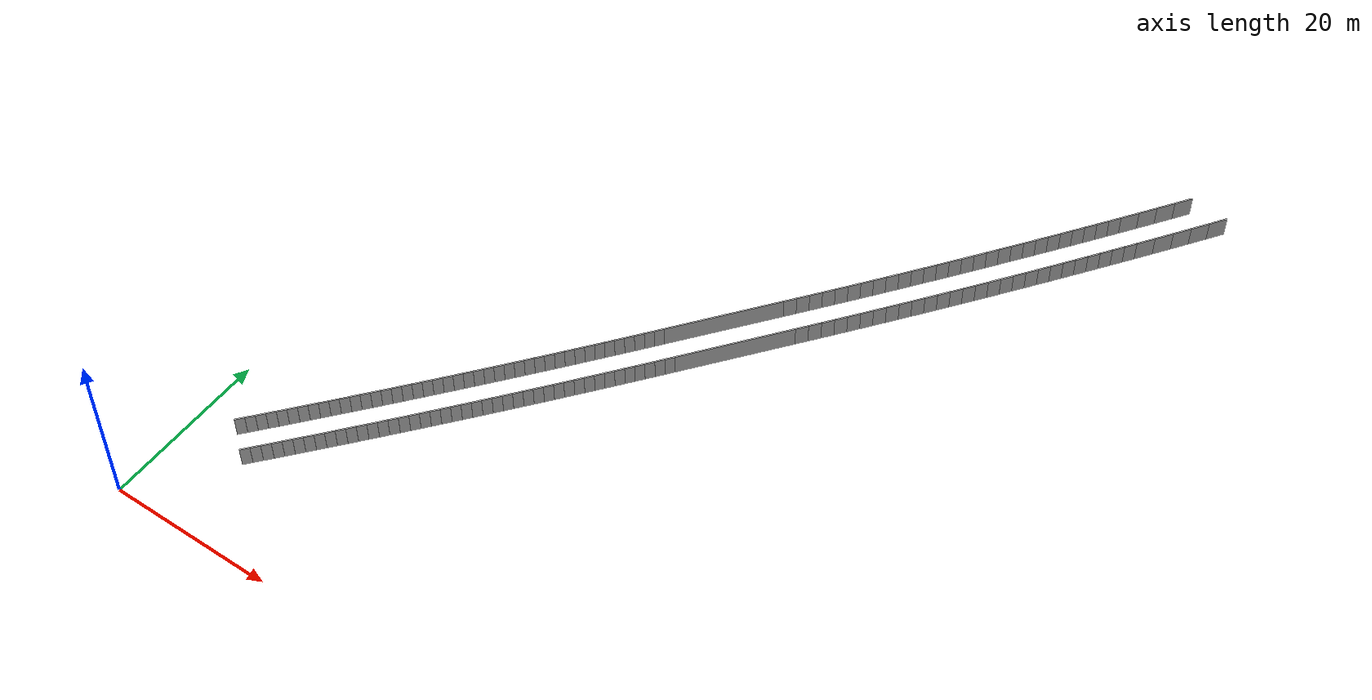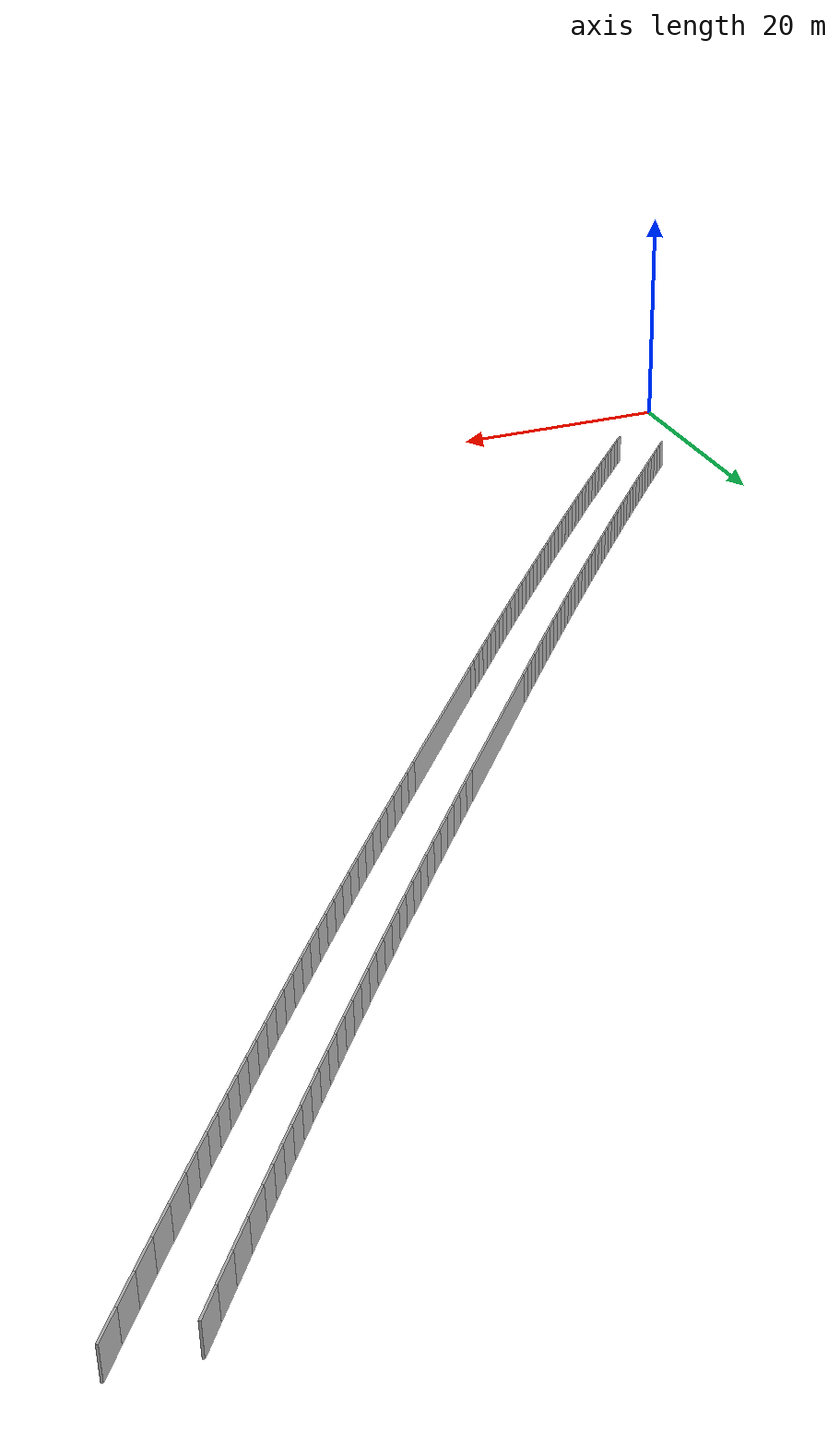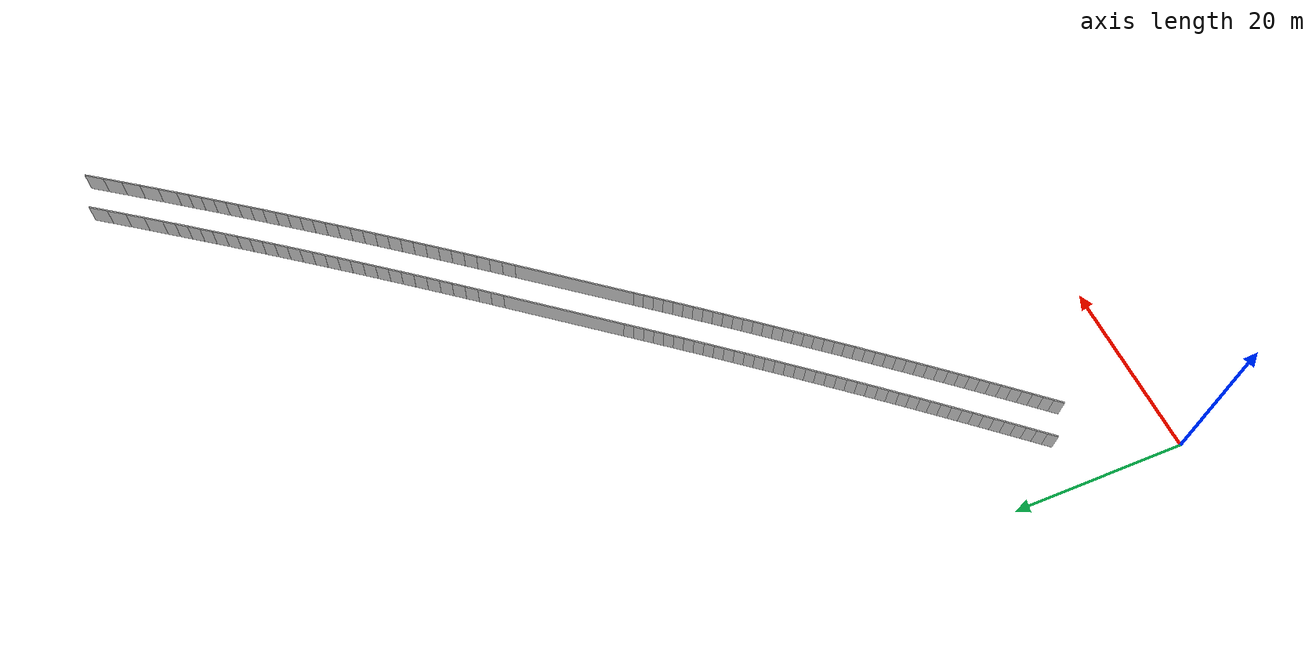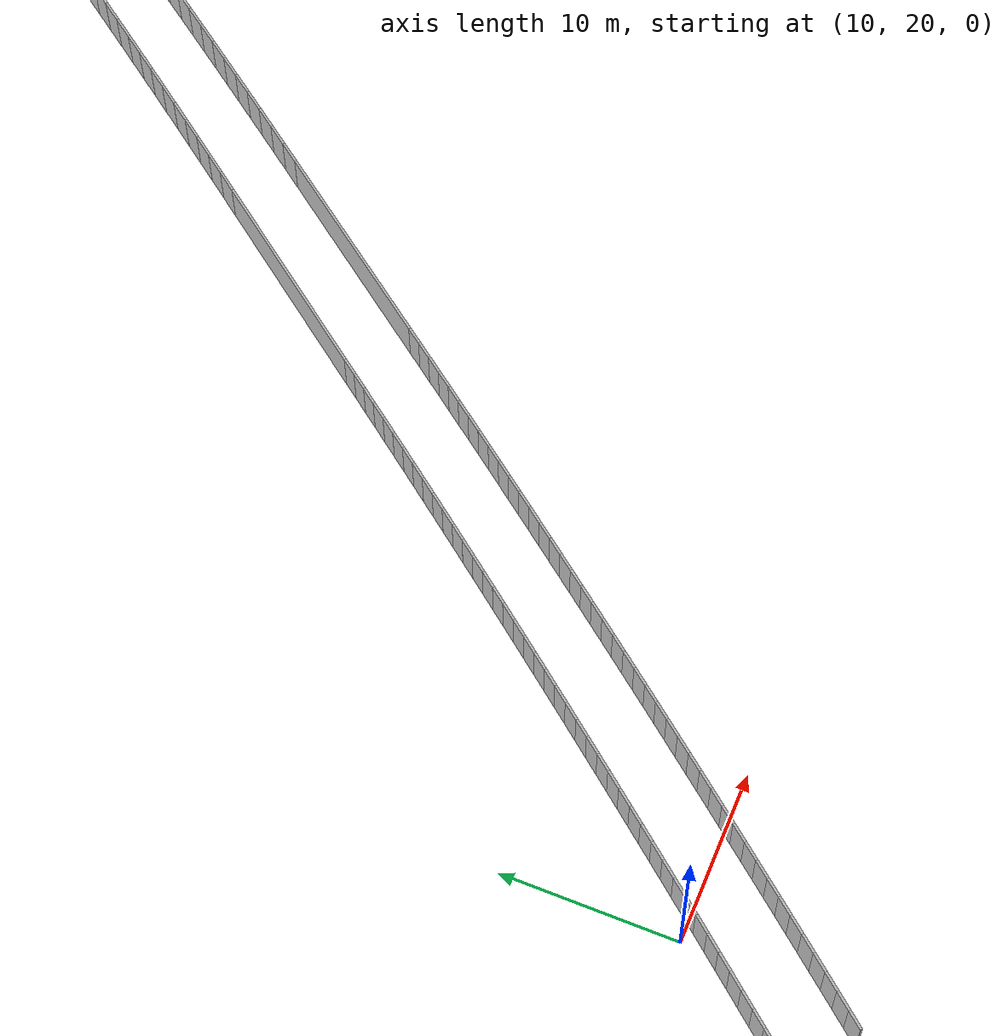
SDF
<sdf version="1.6">
 <model name="sps_2106">
  <static>1</static>
  <allow_auto_disable>0</allow_auto_disable>
  <link name="Wall250">
   <collision name="collision"><geometry><box><size>13.7169 0.15 2.5</size></box></geometry></collision>
   <visual name="visual">
    <geometry><box><size>13.7169 0.15 2.5</size></box></geometry>
    <transparency>0.0</transparency>
   </visual>
   <pose>41.9678 52.3142 1.25 0 0 -2.22473</pose>
  </link>
  <link name="Wall474">
   <collision name="collision"><geometry><box><size>13.7281 0.15 2.5</size></box></geometry></collision>
   <visual name="visual">
    <geometry><box><size>13.7281 0.15 2.5</size></box></geometry>
    <transparency>0.0</transparency>
   </visual>
   <pose>38.6811 54.8316 1.25 0 -0 0.916844</pose>
  </link>
  <link name="Wall4303">
   <collision name="collision"><geometry><box><size>1.5025 0.15 2.5</size></box></geometry></collision>
   <visual name="visual">
    <geometry><box><size>1.5025 0.15 2.5</size></box></geometry>
    <transparency>0.0</transparency>
   </visual>
   <pose>46.5969 58.3539 1.25 0 -0 0.916701</pose>
  </link>
  <link name="Wall4304">
   <collision name="collision"><geometry><box><size>1.50299 0.15 2.5</size></box></geometry></collision>
   <visual name="visual">
    <geometry><box><size>1.50299 0.15 2.5</size></box></geometry>
    <transparency>0.0</transparency>
   </visual>
   <pose>47.5103 59.5472 1.25 0 -0 0.91828</pose>
  </link>
  <link name="Wall4305">
   <collision name="collision"><geometry><box><size>1.50314 0.15 2.5</size></box></geometry></collision>
   <visual name="visual">
    <geometry><box><size>1.50314 0.15 2.5</size></box></geometry>
    <transparency>0.0</transparency>
   </visual>
   <pose>48.4221 60.7421 1.25 0 -0 0.919686</pose>
  </link>
  <link name="Wall4306">
   <collision name="collision"><geometry><box><size>1.50288 0.15 2.5</size></box></geometry></collision>
   <visual name="visual">
    <geometry><box><size>1.50288 0.15 2.5</size></box></geometry>
    <transparency>0.0</transparency>
   </visual>
   <pose>49.3321 61.9384 1.25 0 -0 0.92139</pose>
  </link>
  <link name="Wall4307">
   <collision name="collision"><geometry><box><size>1.50309 0.15 2.5</size></box></geometry></collision>
   <visual name="visual">
    <geometry><box><size>1.50309 0.15 2.5</size></box></geometry>
    <transparency>0.0</transparency>
   </visual>
   <pose>50.24 63.1362 1.25 0 -0 0.923023</pose>
  </link>
  <link name="Wall4308">
   <collision name="collision"><geometry><box><size>1.50314 0.15 2.5</size></box></geometry></collision>
   <visual name="visual">
    <geometry><box><size>1.50314 0.15 2.5</size></box></geometry>
    <transparency>0.0</transparency>
   </visual>
   <pose>51.146 64.3355 1.25 0 -0 0.924526</pose>
  </link>
  <link name="Wall4309">
   <collision name="collision"><geometry><box><size>1.50305 0.15 2.5</size></box></geometry></collision>
   <visual name="visual">
    <geometry><box><size>1.50305 0.15 2.5</size></box></geometry>
    <transparency>0.0</transparency>
   </visual>
   <pose>52.0503 65.5362 1.25 0 -0 0.926158</pose>
  </link>
  <link name="Wall4310">
   <collision name="collision"><geometry><box><size>1.50306 0.15 2.5</size></box></geometry></collision>
   <visual name="visual">
    <geometry><box><size>1.50306 0.15 2.5</size></box></geometry>
    <transparency>0.0</transparency>
   </visual>
   <pose>52.9526 66.7383 1.25 0 -0 0.927636</pose>
  </link>
  <link name="Wall4311">
   <collision name="collision"><geometry><box><size>1.50314 0.15 2.5</size></box></geometry></collision>
   <visual name="visual">
    <geometry><box><size>1.50314 0.15 2.5</size></box></geometry>
    <transparency>0.0</transparency>
   </visual>
   <pose>53.853 67.9419 1.25 0 -0 0.929399</pose>
  </link>
  <link name="Wall4312">
   <collision name="collision"><geometry><box><size>1.5031 0.15 2.5</size></box></geometry></collision>
   <visual name="visual">
    <geometry><box><size>1.5031 0.15 2.5</size></box></geometry>
    <transparency>0.0</transparency>
   </visual>
   <pose>54.7515 69.1469 1.25 0 -0 0.930795</pose>
  </link>
  <link name="Wall4313">
   <collision name="collision"><geometry><box><size>1.50308 0.15 2.5</size></box></geometry></collision>
   <visual name="visual">
    <geometry><box><size>1.50308 0.15 2.5</size></box></geometry>
    <transparency>0.0</transparency>
   </visual>
   <pose>55.6481 70.3533 1.25 0 -0 0.932509</pose>
  </link>
  <link name="Wall4314">
   <collision name="collision"><geometry><box><size>1.5031 0.15 2.5</size></box></geometry></collision>
   <visual name="visual">
    <geometry><box><size>1.5031 0.15 2.5</size></box></geometry>
    <transparency>0.0</transparency>
   </visual>
   <pose>56.5427 71.5612 1.25 0 -0 0.934133</pose>
  </link>
  <link name="Wall4315">
   <collision name="collision"><geometry><box><size>1.50325 0.15 2.5</size></box></geometry></collision>
   <visual name="visual">
    <geometry><box><size>1.50325 0.15 2.5</size></box></geometry>
    <transparency>0.0</transparency>
   </visual>
   <pose>57.4354 72.7705 1.25 0 -0 0.93557</pose>
  </link>
  <link name="Wall4316">
   <collision name="collision"><geometry><box><size>1.50292 0.15 2.5</size></box></geometry></collision>
   <visual name="visual">
    <geometry><box><size>1.50292 0.15 2.5</size></box></geometry>
    <transparency>0.0</transparency>
   </visual>
   <pose>58.3263 73.9811 1.25 0 -0 0.937172</pose>
  </link>
  <link name="Wall4317">
   <collision name="collision"><geometry><box><size>1.50368 0.15 2.5</size></box></geometry></collision>
   <visual name="visual">
    <geometry><box><size>1.50368 0.15 2.5</size></box></geometry>
    <transparency>0.0</transparency>
   </visual>
   <pose>59.2154 75.1933 1.25 0 -0 0.93875</pose>
  </link>
  <link name="Wall4318">
   <collision name="collision"><geometry><box><size>1.50314 0.15 2.5</size></box></geometry></collision>
   <visual name="visual">
    <geometry><box><size>1.50314 0.15 2.5</size></box></geometry>
    <transparency>0.0</transparency>
   </visual>
   <pose>60.1027 76.407 1.25 0 -0 0.940403</pose>
  </link>
  <link name="Wall4319">
   <collision name="collision"><geometry><box><size>1.50312 0.15 2.5</size></box></geometry></collision>
   <visual name="visual">
    <geometry><box><size>1.50312 0.15 2.5</size></box></geometry>
    <transparency>0.0</transparency>
   </visual>
   <pose>60.9878 77.6219 1.25 0 -0 0.941946</pose>
  </link>
  <link name="Wall4320">
   <collision name="collision"><geometry><box><size>1.5031 0.15 2.5</size></box></geometry></collision>
   <visual name="visual">
    <geometry><box><size>1.5031 0.15 2.5</size></box></geometry>
    <transparency>0.0</transparency>
   </visual>
   <pose>61.8709 78.8382 1.25 0 -0 0.943546</pose>
  </link>
  <link name="Wall4321">
   <collision name="collision"><geometry><box><size>1.50315 0.15 2.5</size></box></geometry></collision>
   <visual name="visual">
    <geometry><box><size>1.50315 0.15 2.5</size></box></geometry>
    <transparency>0.0</transparency>
   </visual>
   <pose>62.7522 80.0559 1.25 0 -0 0.94517</pose>
  </link>
  <link name="Wall4322">
   <collision name="collision"><geometry><box><size>1.50302 0.15 2.5</size></box></geometry></collision>
   <visual name="visual">
    <geometry><box><size>1.50302 0.15 2.5</size></box></geometry>
    <transparency>0.0</transparency>
   </visual>
   <pose>63.6314 81.275 1.25 0 -0 0.946813</pose>
  </link>
  <link name="Wall4323">
   <collision name="collision"><geometry><box><size>1.50313 0.15 2.5</size></box></geometry></collision>
   <visual name="visual">
    <geometry><box><size>1.50313 0.15 2.5</size></box></geometry>
    <transparency>0.0</transparency>
   </visual>
   <pose>64.5087 82.4955 1.25 0 -0 0.948314</pose>
  </link>
  <link name="Wall4324">
   <collision name="collision"><geometry><box><size>1.50295 0.15 2.5</size></box></geometry></collision>
   <visual name="visual">
    <geometry><box><size>1.50295 0.15 2.5</size></box></geometry>
    <transparency>0.0</transparency>
   </visual>
   <pose>65.3841 83.7173 1.25 0 -0 0.949876</pose>
  </link>
  <link name="Wall4325">
   <collision name="collision"><geometry><box><size>1.50307 0.15 2.5</size></box></geometry></collision>
   <visual name="visual">
    <geometry><box><size>1.50307 0.15 2.5</size></box></geometry>
    <transparency>0.0</transparency>
   </visual>
   <pose>66.2574 84.9405 1.25 0 -0 0.951581</pose>
  </link>
  <link name="Wall4326">
   <collision name="collision"><geometry><box><size>1.50299 0.15 2.5</size></box></geometry></collision>
   <visual name="visual">
    <geometry><box><size>1.50299 0.15 2.5</size></box></geometry>
    <transparency>0.0</transparency>
   </visual>
   <pose>67.1289 86.1651 1.25 0 -0 0.952987</pose>
  </link>
  <link name="Wall4327">
   <collision name="collision"><geometry><box><size>1.5032 0.15 2.5</size></box></geometry></collision>
   <visual name="visual">
    <geometry><box><size>1.5032 0.15 2.5</size></box></geometry>
    <transparency>0.0</transparency>
   </visual>
   <pose>67.9986 87.3911 1.25 0 -0 0.954682</pose>
  </link>
  <link name="Wall4328">
   <collision name="collision"><geometry><box><size>1.50325 0.15 2.5</size></box></geometry></collision>
   <visual name="visual">
    <geometry><box><size>1.50325 0.15 2.5</size></box></geometry>
    <transparency>0.0</transparency>
   </visual>
   <pose>68.8663 88.6186 1.25 0 -0 0.956248</pose>
  </link>
  <link name="Wall4329">
   <collision name="collision"><geometry><box><size>1.50313 0.15 2.5</size></box></geometry></collision>
   <visual name="visual">
    <geometry><box><size>1.50313 0.15 2.5</size></box></geometry>
    <transparency>0.0</transparency>
   </visual>
   <pose>69.732 89.8474 1.25 0 -0 0.957778</pose>
  </link>
  <link name="Wall4330">
   <collision name="collision"><geometry><box><size>2.25437 0.15 2.5</size></box></geometry></collision>
   <visual name="visual">
    <geometry><box><size>2.25437 0.15 2.5</size></box></geometry>
    <transparency>0.0</transparency>
   </visual>
   <pose>70.8111 91.3854 1.25 0 -0 0.959844</pose>
  </link>
  <link name="Wall4331">
   <collision name="collision"><geometry><box><size>2.25446 0.15 2.5</size></box></geometry></collision>
   <visual name="visual">
    <geometry><box><size>2.25446 0.15 2.5</size></box></geometry>
    <transparency>0.0</transparency>
   </visual>
   <pose>72.1022 93.2335 1.25 0 -0 0.962151</pose>
  </link>
  <link name="Wall4332">
   <collision name="collision"><geometry><box><size>2.25441 0.15 2.5</size></box></geometry></collision>
   <visual name="visual">
    <geometry><box><size>2.25441 0.15 2.5</size></box></geometry>
    <transparency>0.0</transparency>
   </visual>
   <pose>73.389 95.0846 1.25 0 -0 0.964509</pose>
  </link>
  <link name="Wall4333">
   <collision name="collision"><geometry><box><size>2.25487 0.15 2.5</size></box></geometry></collision>
   <visual name="visual">
    <geometry><box><size>2.25487 0.15 2.5</size></box></geometry>
    <transparency>0.0</transparency>
   </visual>
   <pose>74.6714 96.939 1.25 0 -0 0.96702</pose>
  </link>
  <link name="Wall4334">
   <collision name="collision"><geometry><box><size>2.25466 0.15 2.5</size></box></geometry></collision>
   <visual name="visual">
    <geometry><box><size>2.25466 0.15 2.5</size></box></geometry>
    <transparency>0.0</transparency>
   </visual>
   <pose>75.9494 98.7966 1.25 0 -0 0.969354</pose>
  </link>
  <link name="Wall6028">
   <collision name="collision"><geometry><box><size>1.49649 0.15 2.5</size></box></geometry></collision>
   <visual name="visual">
    <geometry><box><size>1.49649 0.15 2.5</size></box></geometry>
    <transparency>0.0</transparency>
   </visual>
   <pose>43.3121 60.8732 1.25 0 -0 0.916446</pose>
  </link>
  <link name="Wall6029">
   <collision name="collision"><geometry><box><size>1.49653 0.15 2.5</size></box></geometry></collision>
   <visual name="visual">
    <geometry><box><size>1.49653 0.15 2.5</size></box></geometry>
    <transparency>0.0</transparency>
   </visual>
   <pose>44.2219 62.0614 1.25 0 -0 0.918216</pose>
  </link>
  <link name="Wall6030">
   <collision name="collision"><geometry><box><size>1.49642 0.15 2.5</size></box></geometry></collision>
   <visual name="visual">
    <geometry><box><size>1.49642 0.15 2.5</size></box></geometry>
    <transparency>0.0</transparency>
   </visual>
   <pose>45.1296 63.2511 1.25 0 -0 0.919798</pose>
  </link>
  <link name="Wall6031">
   <collision name="collision"><geometry><box><size>1.49662 0.15 2.5</size></box></geometry></collision>
   <visual name="visual">
    <geometry><box><size>1.49662 0.15 2.5</size></box></geometry>
    <transparency>0.0</transparency>
   </visual>
   <pose>46.0356 64.4422 1.25 0 -0 0.921235</pose>
  </link>
  <link name="Wall6032">
   <collision name="collision"><geometry><box><size>1.49636 0.15 2.5</size></box></geometry></collision>
   <visual name="visual">
    <geometry><box><size>1.49636 0.15 2.5</size></box></geometry>
    <transparency>0.0</transparency>
   </visual>
   <pose>46.9398 65.6347 1.25 0 -0 0.922947</pose>
  </link>
  <link name="Wall6033">
   <collision name="collision"><geometry><box><size>1.49658 0.15 2.5</size></box></geometry></collision>
   <visual name="visual">
    <geometry><box><size>1.49658 0.15 2.5</size></box></geometry>
    <transparency>0.0</transparency>
   </visual>
   <pose>47.8418 66.8287 1.25 0 -0 0.924587</pose>
  </link>
  <link name="Wall6034">
   <collision name="collision"><geometry><box><size>1.49658 0.15 2.5</size></box></geometry></collision>
   <visual name="visual">
    <geometry><box><size>1.49658 0.15 2.5</size></box></geometry>
    <transparency>0.0</transparency>
   </visual>
   <pose>48.7421 68.0242 1.25 0 -0 0.926072</pose>
  </link>
  <link name="Wall6035">
   <collision name="collision"><geometry><box><size>1.49655 0.15 2.5</size></box></geometry></collision>
   <visual name="visual">
    <geometry><box><size>1.49655 0.15 2.5</size></box></geometry>
    <transparency>0.0</transparency>
   </visual>
   <pose>49.6406 69.2211 1.25 0 -0 0.927736</pose>
  </link>
  <link name="Wall6036">
   <collision name="collision"><geometry><box><size>1.49641 0.15 2.5</size></box></geometry></collision>
   <visual name="visual">
    <geometry><box><size>1.49641 0.15 2.5</size></box></geometry>
    <transparency>0.0</transparency>
   </visual>
   <pose>50.5369 70.4194 1.25 0 -0 0.929351</pose>
  </link>
  <link name="Wall6037">
   <collision name="collision"><geometry><box><size>1.49653 0.15 2.5</size></box></geometry></collision>
   <visual name="visual">
    <geometry><box><size>1.49653 0.15 2.5</size></box></geometry>
    <transparency>0.0</transparency>
   </visual>
   <pose>51.4314 71.6191 1.25 0 -0 0.930884</pose>
  </link>
  <link name="Wall6038">
   <collision name="collision"><geometry><box><size>1.49655 0.15 2.5</size></box></geometry></collision>
   <visual name="visual">
    <geometry><box><size>1.49655 0.15 2.5</size></box></geometry>
    <transparency>0.0</transparency>
   </visual>
   <pose>52.3241 72.8203 1.25 0 -0 0.932573</pose>
  </link>
  <link name="Wall6039">
   <collision name="collision"><geometry><box><size>1.49645 0.15 2.5</size></box></geometry></collision>
   <visual name="visual">
    <geometry><box><size>1.49645 0.15 2.5</size></box></geometry>
    <transparency>0.0</transparency>
   </visual>
   <pose>53.2147 74.0229 1.25 0 -0 0.934041</pose>
  </link>
  <link name="Wall6040">
   <collision name="collision"><geometry><box><size>1.49657 0.15 2.5</size></box></geometry></collision>
   <visual name="visual">
    <geometry><box><size>1.49657 0.15 2.5</size></box></geometry>
    <transparency>0.0</transparency>
   </visual>
   <pose>54.1036 75.2268 1.25 0 -0 0.935574</pose>
  </link>
  <link name="Wall6041">
   <collision name="collision"><geometry><box><size>1.4965 0.15 2.5</size></box></geometry></collision>
   <visual name="visual">
    <geometry><box><size>1.4965 0.15 2.5</size></box></geometry>
    <transparency>0.0</transparency>
   </visual>
   <pose>54.9907 76.4321 1.25 0 -0 0.937157</pose>
  </link>
  <link name="Wall6042">
   <collision name="collision"><geometry><box><size>1.49666 0.15 2.5</size></box></geometry></collision>
   <visual name="visual">
    <geometry><box><size>1.49666 0.15 2.5</size></box></geometry>
    <transparency>0.0</transparency>
   </visual>
   <pose>55.8758 77.6389 1.25 0 -0 0.938804</pose>
  </link>
  <link name="Wall6043">
   <collision name="collision"><geometry><box><size>1.49638 0.15 2.5</size></box></geometry></collision>
   <visual name="visual">
    <geometry><box><size>1.49638 0.15 2.5</size></box></geometry>
    <transparency>0.0</transparency>
   </visual>
   <pose>56.7588 78.8471 1.25 0 -0 0.940438</pose>
  </link>
  <link name="Wall6044">
   <collision name="collision"><geometry><box><size>1.49659 0.15 2.5</size></box></geometry></collision>
   <visual name="visual">
    <geometry><box><size>1.49659 0.15 2.5</size></box></geometry>
    <transparency>0.0</transparency>
   </visual>
   <pose>57.6399 80.0567 1.25 0 -0 0.942051</pose>
  </link>
  <link name="Wall6045">
   <collision name="collision"><geometry><box><size>1.49668 0.15 2.5</size></box></geometry></collision>
   <visual name="visual">
    <geometry><box><size>1.49668 0.15 2.5</size></box></geometry>
    <transparency>0.0</transparency>
   </visual>
   <pose>58.5192 81.2678 1.25 0 -0 0.943559</pose>
  </link>
  <link name="Wall6046">
   <collision name="collision"><geometry><box><size>1.49719 0.15 2.5</size></box></geometry></collision>
   <visual name="visual">
    <geometry><box><size>1.49719 0.15 2.5</size></box></geometry>
    <transparency>0.0</transparency>
   </visual>
   <pose>59.397 82.4804 1.25 0 -0 0.944964</pose>
  </link>
  <link name="Wall6047">
   <collision name="collision"><geometry><box><size>1.4964 0.15 2.5</size></box></geometry></collision>
   <visual name="visual">
    <geometry><box><size>1.4964 0.15 2.5</size></box></geometry>
    <transparency>0.0</transparency>
   </visual>
   <pose>60.2727 83.6943 1.25 0 -0 0.946744</pose>
  </link>
  <link name="Wall6048">
   <collision name="collision"><geometry><box><size>1.49671 0.15 2.5</size></box></geometry></collision>
   <visual name="visual">
    <geometry><box><size>1.49671 0.15 2.5</size></box></geometry>
    <transparency>0.0</transparency>
   </visual>
   <pose>61.1462 84.9095 1.25 0 -0 0.948347</pose>
  </link>
  <link name="Wall6049">
   <collision name="collision"><geometry><box><size>1.49638 0.15 2.5</size></box></geometry></collision>
   <visual name="visual">
    <geometry><box><size>1.49638 0.15 2.5</size></box></geometry>
    <transparency>0.0</transparency>
   </visual>
   <pose>62.0178 86.126 1.25 0 -0 0.949845</pose>
  </link>
  <link name="Wall6050">
   <collision name="collision"><geometry><box><size>1.49645 0.15 2.5</size></box></geometry></collision>
   <visual name="visual">
    <geometry><box><size>1.49645 0.15 2.5</size></box></geometry>
    <transparency>0.0</transparency>
   </visual>
   <pose>62.8874 87.3438 1.25 0 -0 0.951533</pose>
  </link>
  <link name="Wall6051">
   <collision name="collision"><geometry><box><size>1.49658 0.15 2.5</size></box></geometry></collision>
   <visual name="visual">
    <geometry><box><size>1.49658 0.15 2.5</size></box></geometry>
    <transparency>0.0</transparency>
   </visual>
   <pose>63.7551 88.5631 1.25 0 -0 0.953097</pose>
  </link>
  <link name="Wall6052">
   <collision name="collision"><geometry><box><size>1.4964 0.15 2.5</size></box></geometry></collision>
   <visual name="visual">
    <geometry><box><size>1.4964 0.15 2.5</size></box></geometry>
    <transparency>0.0</transparency>
   </visual>
   <pose>64.6208 89.7837 1.25 0 -0 0.95461</pose>
  </link>
  <link name="Wall6053">
   <collision name="collision"><geometry><box><size>1.49638 0.15 2.5</size></box></geometry></collision>
   <visual name="visual">
    <geometry><box><size>1.49638 0.15 2.5</size></box></geometry>
    <transparency>0.0</transparency>
   </visual>
   <pose>65.4846 91.0056 1.25 0 -0 0.956251</pose>
  </link>
  <link name="Wall6054">
   <collision name="collision"><geometry><box><size>1.4964 0.15 2.5</size></box></geometry></collision>
   <visual name="visual">
    <geometry><box><size>1.4964 0.15 2.5</size></box></geometry>
    <transparency>0.0</transparency>
   </visual>
   <pose>66.3465 92.2289 1.25 0 -0 0.957858</pose>
  </link>
  <link name="Wall6055">
   <collision name="collision"><geometry><box><size>2.2449 0.15 2.5</size></box></geometry></collision>
   <visual name="visual">
    <geometry><box><size>2.2449 0.15 2.5</size></box></geometry>
    <transparency>0.0</transparency>
   </visual>
   <pose>67.4208 93.7603 1.25 0 -0 0.959845</pose>
  </link>
  <link name="Wall6056">
   <collision name="collision"><geometry><box><size>2.24484 0.15 2.5</size></box></geometry></collision>
   <visual name="visual">
    <geometry><box><size>2.24484 0.15 2.5</size></box></geometry>
    <transparency>0.0</transparency>
   </visual>
   <pose>68.7064 95.6006 1.25 0 -0 0.962213</pose>
  </link>
  <link name="Wall6057">
   <collision name="collision"><geometry><box><size>2.24479 0.15 2.5</size></box></geometry></collision>
   <visual name="visual">
    <geometry><box><size>2.24479 0.15 2.5</size></box></geometry>
    <transparency>0.0</transparency>
   </visual>
   <pose>69.9875 97.4439 1.25 0 -0 0.964581</pose>
  </link>
  <link name="Wall6058">
   <collision name="collision"><geometry><box><size>2.24473 0.15 2.5</size></box></geometry></collision>
   <visual name="visual">
    <geometry><box><size>2.24473 0.15 2.5</size></box></geometry>
    <transparency>0.0</transparency>
   </visual>
   <pose>71.2645 99.2901 1.25 0 -0 0.966813</pose>
  </link>
  <link name="Wall7267">
   <collision name="collision"><geometry><box><size>1.12621 0.15 2.5</size></box></geometry></collision>
   <visual name="visual">
    <geometry><box><size>1.12621 0.15 2.5</size></box></geometry>
    <transparency>0.0</transparency>
   </visual>
   <pose>8.50967 10.4473 1.25 0 -0 0.868883</pose>
  </link>
  <link name="Wall7268">
   <collision name="collision"><geometry><box><size>1.12638 0.15 2.5</size></box></geometry></collision>
   <visual name="visual">
    <geometry><box><size>1.12638 0.15 2.5</size></box></geometry>
    <transparency>0.0</transparency>
   </visual>
   <pose>9.23635 11.3078 1.25 0 -0 0.87014</pose>
  </link>
  <link name="Wall7269">
   <collision name="collision"><geometry><box><size>1.12635 0.15 2.5</size></box></geometry></collision>
   <visual name="visual">
    <geometry><box><size>1.12635 0.15 2.5</size></box></geometry>
    <transparency>0.0</transparency>
   </visual>
   <pose>9.96206 12.1692 1.25 0 -0 0.871257</pose>
  </link>
  <link name="Wall7270">
   <collision name="collision"><geometry><box><size>1.12629 0.15 2.5</size></box></geometry></collision>
   <visual name="visual">
    <geometry><box><size>1.12629 0.15 2.5</size></box></geometry>
    <transparency>0.0</transparency>
   </visual>
   <pose>10.6868 13.0314 1.25 0 -0 0.872415</pose>
  </link>
  <link name="Wall7271">
   <collision name="collision"><geometry><box><size>1.1263 0.15 2.5</size></box></geometry></collision>
   <visual name="visual">
    <geometry><box><size>1.1263 0.15 2.5</size></box></geometry>
    <transparency>0.0</transparency>
   </visual>
   <pose>11.4104 13.8945 1.25 0 -0 0.873761</pose>
  </link>
  <link name="Wall7272">
   <collision name="collision"><geometry><box><size>1.12665 0.15 2.5</size></box></geometry></collision>
   <visual name="visual">
    <geometry><box><size>1.12665 0.15 2.5</size></box></geometry>
    <transparency>0.0</transparency>
   </visual>
   <pose>12.1331 14.7586 1.25 0 -0 0.874733</pose>
  </link>
  <link name="Wall7273">
   <collision name="collision"><geometry><box><size>1.12637 0.15 2.5</size></box></geometry></collision>
   <visual name="visual">
    <geometry><box><size>1.12637 0.15 2.5</size></box></geometry>
    <transparency>0.0</transparency>
   </visual>
   <pose>12.8548 15.6236 1.25 0 -0 0.876218</pose>
  </link>
  <link name="Wall7274">
   <collision name="collision"><geometry><box><size>1.12625 0.15 2.5</size></box></geometry></collision>
   <visual name="visual">
    <geometry><box><size>1.12625 0.15 2.5</size></box></geometry>
    <transparency>0.0</transparency>
   </visual>
   <pose>13.5752 16.4893 1.25 0 -0 0.877189</pose>
  </link>
  <link name="Wall7275">
   <collision name="collision"><geometry><box><size>1.12623 0.15 2.5</size></box></geometry></collision>
   <visual name="visual">
    <geometry><box><size>1.12623 0.15 2.5</size></box></geometry>
    <transparency>0.0</transparency>
   </visual>
   <pose>14.2947 17.3558 1.25 0 -0 0.878577</pose>
  </link>
  <link name="Wall7276">
   <collision name="collision"><geometry><box><size>1.12629 0.15 2.5</size></box></geometry></collision>
   <visual name="visual">
    <geometry><box><size>1.12629 0.15 2.5</size></box></geometry>
    <transparency>0.0</transparency>
   </visual>
   <pose>15.0131 18.2232 1.25 0 -0 0.879611</pose>
  </link>
  <link name="Wall7277">
   <collision name="collision"><geometry><box><size>1.12631 0.15 2.5</size></box></geometry></collision>
   <visual name="visual">
    <geometry><box><size>1.12631 0.15 2.5</size></box></geometry>
    <transparency>0.0</transparency>
   </visual>
   <pose>15.7304 19.0915 1.25 0 -0 0.880957</pose>
  </link>
  <link name="Wall7278">
   <collision name="collision"><geometry><box><size>1.12646 0.15 2.5</size></box></geometry></collision>
   <visual name="visual">
    <geometry><box><size>1.12646 0.15 2.5</size></box></geometry>
    <transparency>0.0</transparency>
   </visual>
   <pose>16.4468 19.9607 1.25 0 -0 0.881983</pose>
  </link>
  <link name="Wall7279">
   <collision name="collision"><geometry><box><size>1.12615 0.15 2.5</size></box></geometry></collision>
   <visual name="visual">
    <geometry><box><size>1.12615 0.15 2.5</size></box></geometry>
    <transparency>0.0</transparency>
   </visual>
   <pose>17.1623 20.8306 1.25 0 -0 0.883088</pose>
  </link>
  <link name="Wall7280">
   <collision name="collision"><geometry><box><size>1.12629 0.15 2.5</size></box></geometry></collision>
   <visual name="visual">
    <geometry><box><size>1.12629 0.15 2.5</size></box></geometry>
    <transparency>0.0</transparency>
   </visual>
   <pose>17.8766 21.7013 1.25 0 -0 0.884384</pose>
  </link>
  <link name="Wall7281">
   <collision name="collision"><geometry><box><size>1.12639 0.15 2.5</size></box></geometry></collision>
   <visual name="visual">
    <geometry><box><size>1.12639 0.15 2.5</size></box></geometry>
    <transparency>0.0</transparency>
   </visual>
   <pose>18.5899 22.573 1.25 0 -0 0.885646</pose>
  </link>
  <link name="Wall7282">
   <collision name="collision"><geometry><box><size>1.12627 0.15 2.5</size></box></geometry></collision>
   <visual name="visual">
    <geometry><box><size>1.12627 0.15 2.5</size></box></geometry>
    <transparency>0.0</transparency>
   </visual>
   <pose>19.3021 23.4456 1.25 0 -0 0.886889</pose>
  </link>
  <link name="Wall7283">
   <collision name="collision"><geometry><box><size>1.12623 0.15 2.5</size></box></geometry></collision>
   <visual name="visual">
    <geometry><box><size>1.12623 0.15 2.5</size></box></geometry>
    <transparency>0.0</transparency>
   </visual>
   <pose>20.0131 24.319 1.25 0 -0 0.888049</pose>
  </link>
  <link name="Wall7284">
   <collision name="collision"><geometry><box><size>1.12632 0.15 2.5</size></box></geometry></collision>
   <visual name="visual">
    <geometry><box><size>1.12632 0.15 2.5</size></box></geometry>
    <transparency>0.0</transparency>
   </visual>
   <pose>20.7233 25.1932 1.25 0 -0 0.889158</pose>
  </link>
  <link name="Wall7285">
   <collision name="collision"><geometry><box><size>1.12568 0.15 2.5</size></box></geometry></collision>
   <visual name="visual">
    <geometry><box><size>1.12568 0.15 2.5</size></box></geometry>
    <transparency>0.0</transparency>
   </visual>
   <pose>21.4322 26.068 1.25 0 -0 0.890373</pose>
  </link>
  <link name="Wall7286">
   <collision name="collision"><geometry><box><size>1.12639 0.15 2.5</size></box></geometry></collision>
   <visual name="visual">
    <geometry><box><size>1.12639 0.15 2.5</size></box></geometry>
    <transparency>0.0</transparency>
   </visual>
   <pose>22.1401 26.9437 1.25 0 -0 0.891579</pose>
  </link>
  <link name="Wall7287">
   <collision name="collision"><geometry><box><size>1.12609 0.15 2.5</size></box></geometry></collision>
   <visual name="visual">
    <geometry><box><size>1.12609 0.15 2.5</size></box></geometry>
    <transparency>0.0</transparency>
   </visual>
   <pose>22.8471 27.8204 1.25 0 -0 0.892686</pose>
  </link>
  <link name="Wall7288">
   <collision name="collision"><geometry><box><size>1.12641 0.15 2.5</size></box></geometry></collision>
   <visual name="visual">
    <geometry><box><size>1.12641 0.15 2.5</size></box></geometry>
    <transparency>0.0</transparency>
   </visual>
   <pose>23.5531 28.6979 1.25 0 -0 0.893889</pose>
  </link>
  <link name="Wall7289">
   <collision name="collision"><geometry><box><size>1.12626 0.15 2.5</size></box></geometry></collision>
   <visual name="visual">
    <geometry><box><size>1.12626 0.15 2.5</size></box></geometry>
    <transparency>0.0</transparency>
   </visual>
   <pose>24.258 29.5763 1.25 0 -0 0.895099</pose>
  </link>
  <link name="Wall7290">
   <collision name="collision"><geometry><box><size>1.12626 0.15 2.5</size></box></geometry></collision>
   <visual name="visual">
    <geometry><box><size>1.12626 0.15 2.5</size></box></geometry>
    <transparency>0.0</transparency>
   </visual>
   <pose>24.962 30.4555 1.25 0 -0 0.896216</pose>
  </link>
  <link name="Wall7291">
   <collision name="collision"><geometry><box><size>1.12628 0.15 2.5</size></box></geometry></collision>
   <visual name="visual">
    <geometry><box><size>1.12628 0.15 2.5</size></box></geometry>
    <transparency>0.0</transparency>
   </visual>
   <pose>25.6648 31.3356 1.25 0 -0 0.89768</pose>
  </link>
  <link name="Wall7292">
   <collision name="collision"><geometry><box><size>1.1263 0.15 2.5</size></box></geometry></collision>
   <visual name="visual">
    <geometry><box><size>1.1263 0.15 2.5</size></box></geometry>
    <transparency>0.0</transparency>
   </visual>
   <pose>26.3665 32.2165 1.25 0 -0 0.898527</pose>
  </link>
  <link name="Wall7293">
   <collision name="collision"><geometry><box><size>1.1263 0.15 2.5</size></box></geometry></collision>
   <visual name="visual">
    <geometry><box><size>1.1263 0.15 2.5</size></box></geometry>
    <transparency>0.0</transparency>
   </visual>
   <pose>27.0673 33.0982 1.25 0 -0 0.899915</pose>
  </link>
  <link name="Wall7294">
   <collision name="collision"><geometry><box><size>1.12643 0.15 2.5</size></box></geometry></collision>
   <visual name="visual">
    <geometry><box><size>1.12643 0.15 2.5</size></box></geometry>
    <transparency>0.0</transparency>
   </visual>
   <pose>27.7671 33.9808 1.25 0 -0 0.900904</pose>
  </link>
  <link name="Wall7295">
   <collision name="collision"><geometry><box><size>1.12633 0.15 2.5</size></box></geometry></collision>
   <visual name="visual">
    <geometry><box><size>1.12633 0.15 2.5</size></box></geometry>
    <transparency>0.0</transparency>
   </visual>
   <pose>28.466 34.8642 1.25 0 -0 0.902149</pose>
  </link>
  <link name="Wall7296">
   <collision name="collision"><geometry><box><size>1.12627 0.15 2.5</size></box></geometry></collision>
   <visual name="visual">
    <geometry><box><size>1.12627 0.15 2.5</size></box></geometry>
    <transparency>0.0</transparency>
   </visual>
   <pose>29.1637 35.7484 1.25 0 -0 0.903351</pose>
  </link>
  <link name="Wall7297">
   <collision name="collision"><geometry><box><size>1.12607 0.15 2.5</size></box></geometry></collision>
   <visual name="visual">
    <geometry><box><size>1.12607 0.15 2.5</size></box></geometry>
    <transparency>0.0</transparency>
   </visual>
   <pose>29.8601 36.6334 1.25 0 -0 0.904724</pose>
  </link>
  <link name="Wall7298">
   <collision name="collision"><geometry><box><size>1.12639 0.15 2.5</size></box></geometry></collision>
   <visual name="visual">
    <geometry><box><size>1.12639 0.15 2.5</size></box></geometry>
    <transparency>0.0</transparency>
   </visual>
   <pose>30.5555 37.5193 1.25 0 -0 0.905847</pose>
  </link>
  <link name="Wall7299">
   <collision name="collision"><geometry><box><size>1.12627 0.15 2.5</size></box></geometry></collision>
   <visual name="visual">
    <geometry><box><size>1.12627 0.15 2.5</size></box></geometry>
    <transparency>0.0</transparency>
   </visual>
   <pose>31.2501 38.406 1.25 0 -0 0.906863</pose>
  </link>
  <link name="Wall7300">
   <collision name="collision"><geometry><box><size>1.12629 0.15 2.5</size></box></geometry></collision>
   <visual name="visual">
    <geometry><box><size>1.12629 0.15 2.5</size></box></geometry>
    <transparency>0.0</transparency>
   </visual>
   <pose>31.9435 39.2935 1.25 0 -0 0.908251</pose>
  </link>
  <link name="Wall7301">
   <collision name="collision"><geometry><box><size>1.12639 0.15 2.5</size></box></geometry></collision>
   <visual name="visual">
    <geometry><box><size>1.12639 0.15 2.5</size></box></geometry>
    <transparency>0.0</transparency>
   </visual>
   <pose>32.6359 40.1819 1.25 0 -0 0.909283</pose>
  </link>
  <link name="Wall7302">
   <collision name="collision"><geometry><box><size>1.12631 0.15 2.5</size></box></geometry></collision>
   <visual name="visual">
    <geometry><box><size>1.12631 0.15 2.5</size></box></geometry>
    <transparency>0.0</transparency>
   </visual>
   <pose>33.3272 41.0711 1.25 0 -0 0.910528</pose>
  </link>
  <link name="Wall7303">
   <collision name="collision"><geometry><box><size>1.12633 0.15 2.5</size></box></geometry></collision>
   <visual name="visual">
    <geometry><box><size>1.12633 0.15 2.5</size></box></geometry>
    <transparency>0.0</transparency>
   </visual>
   <pose>34.0175 41.9611 1.25 0 -0 0.911645</pose>
  </link>
  <link name="Wall7304">
   <collision name="collision"><geometry><box><size>1.12626 0.15 2.5</size></box></geometry></collision>
   <visual name="visual">
    <geometry><box><size>1.12626 0.15 2.5</size></box></geometry>
    <transparency>0.0</transparency>
   </visual>
   <pose>34.7067 42.8519 1.25 0 -0 0.912966</pose>
  </link>
  <link name="Wall7305">
   <collision name="collision"><geometry><box><size>1.12681 0.15 2.5</size></box></geometry></collision>
   <visual name="visual">
    <geometry><box><size>1.12681 0.15 2.5</size></box></geometry>
    <transparency>0.0</transparency>
   </visual>
   <pose>35.395 43.7437 1.25 0 -0 0.914024</pose>
  </link>
  <link name="Wall7306">
   <collision name="collision"><geometry><box><size>1.12618 0.15 2.5</size></box></geometry></collision>
   <visual name="visual">
    <geometry><box><size>1.12618 0.15 2.5</size></box></geometry>
    <transparency>0.0</transparency>
   </visual>
   <pose>36.0822 44.6363 1.25 0 -0 0.915372</pose>
  </link>
  <link name="Wall7307">
   <collision name="collision"><geometry><box><size>1.12628 0.15 2.5</size></box></geometry></collision>
   <visual name="visual">
    <geometry><box><size>1.12628 0.15 2.5</size></box></geometry>
    <transparency>0.0</transparency>
   </visual>
   <pose>36.7682 45.5295 1.25 0 -0 0.916327</pose>
  </link>
  <link name="Wall7308">
   <collision name="collision"><geometry><box><size>1.12636 0.15 2.5</size></box></geometry></collision>
   <visual name="visual">
    <geometry><box><size>1.12636 0.15 2.5</size></box></geometry>
    <transparency>0.0</transparency>
   </visual>
   <pose>37.4534 46.4235 1.25 0 -0 0.917476</pose>
  </link>
  <link name="Wall10168">
   <collision name="collision"><geometry><box><size>1.12172 0.15 2.5</size></box></geometry></collision>
   <visual name="visual">
    <geometry><box><size>1.12172 0.15 2.5</size></box></geometry>
    <transparency>0.0</transparency>
   </visual>
   <pose>5.34936 13.1214 1.25 0 -0 0.868987</pose>
  </link>
  <link name="Wall10169">
   <collision name="collision"><geometry><box><size>1.12158 0.15 2.5</size></box></geometry></collision>
   <visual name="visual">
    <geometry><box><size>1.12158 0.15 2.5</size></box></geometry>
    <transparency>0.0</transparency>
   </visual>
   <pose>6.07296 13.9784 1.25 0 -0 0.870233</pose>
  </link>
  <link name="Wall10170">
   <collision name="collision"><geometry><box><size>1.12147 0.15 2.5</size></box></geometry></collision>
   <visual name="visual">
    <geometry><box><size>1.12147 0.15 2.5</size></box></geometry>
    <transparency>0.0</transparency>
   </visual>
   <pose>6.79546 14.8362 1.25 0 -0 0.871361</pose>
  </link>
  <link name="Wall10171">
   <collision name="collision"><geometry><box><size>1.12124 0.15 2.5</size></box></geometry></collision>
   <visual name="visual">
    <geometry><box><size>1.12124 0.15 2.5</size></box></geometry>
    <transparency>0.0</transparency>
   </visual>
   <pose>7.51687 15.6947 1.25 0 -0 0.872538</pose>
  </link>
  <link name="Wall10172">
   <collision name="collision"><geometry><box><size>1.1213 0.15 2.5</size></box></geometry></collision>
   <visual name="visual">
    <geometry><box><size>1.1213 0.15 2.5</size></box></geometry>
    <transparency>0.0</transparency>
   </visual>
   <pose>8.23727 16.5539 1.25 0 -0 0.873577</pose>
  </link>
  <link name="Wall10173">
   <collision name="collision"><geometry><box><size>1.1213 0.15 2.5</size></box></geometry></collision>
   <visual name="visual">
    <geometry><box><size>1.1213 0.15 2.5</size></box></geometry>
    <transparency>0.0</transparency>
   </visual>
   <pose>8.95666 17.414 1.25 0 -0 0.874929</pose>
  </link>
  <link name="Wall10174">
   <collision name="collision"><geometry><box><size>1.12124 0.15 2.5</size></box></geometry></collision>
   <visual name="visual">
    <geometry><box><size>1.12124 0.15 2.5</size></box></geometry>
    <transparency>0.0</transparency>
   </visual>
   <pose>9.67495 18.275 1.25 0 -0 0.876093</pose>
  </link>
  <link name="Wall10175">
   <collision name="collision"><geometry><box><size>1.12137 0.15 2.5</size></box></geometry></collision>
   <visual name="visual">
    <geometry><box><size>1.12137 0.15 2.5</size></box></geometry>
    <transparency>0.0</transparency>
   </visual>
   <pose>10.3922 19.1369 1.25 0 -0 0.877319</pose>
  </link>
  <link name="Wall10176">
   <collision name="collision"><geometry><box><size>1.12129 0.15 2.5</size></box></geometry></collision>
   <visual name="visual">
    <geometry><box><size>1.12129 0.15 2.5</size></box></geometry>
    <transparency>0.0</transparency>
   </visual>
   <pose>11.1085 19.9997 1.25 0 -0 0.878602</pose>
  </link>
  <link name="Wall10177">
   <collision name="collision"><geometry><box><size>1.12161 0.15 2.5</size></box></geometry></collision>
   <visual name="visual">
    <geometry><box><size>1.12161 0.15 2.5</size></box></geometry>
    <transparency>0.0</transparency>
   </visual>
   <pose>11.8238 20.8634 1.25 0 -0 0.879618</pose>
  </link>
  <link name="Wall10178">
   <collision name="collision"><geometry><box><size>1.12134 0.15 2.5</size></box></geometry></collision>
   <visual name="visual">
    <geometry><box><size>1.12134 0.15 2.5</size></box></geometry>
    <transparency>0.0</transparency>
   </visual>
   <pose>12.5381 21.7279 1.25 0 -0 0.880762</pose>
  </link>
  <link name="Wall10179">
   <collision name="collision"><geometry><box><size>1.12118 0.15 2.5</size></box></geometry></collision>
   <visual name="visual">
    <geometry><box><size>1.12118 0.15 2.5</size></box></geometry>
    <transparency>0.0</transparency>
   </visual>
   <pose>13.2513 22.5931 1.25 0 -0 0.882052</pose>
  </link>
  <link name="Wall10180">
   <collision name="collision"><geometry><box><size>1.12131 0.15 2.5</size></box></geometry></collision>
   <visual name="visual">
    <geometry><box><size>1.12131 0.15 2.5</size></box></geometry>
    <transparency>0.0</transparency>
   </visual>
   <pose>13.9634 23.4592 1.25 0 -0 0.883278</pose>
  </link>
  <link name="Wall10181">
   <collision name="collision"><geometry><box><size>1.12121 0.15 2.5</size></box></geometry></collision>
   <visual name="visual">
    <geometry><box><size>1.12121 0.15 2.5</size></box></geometry>
    <transparency>0.0</transparency>
   </visual>
   <pose>14.6746 24.3261 1.25 0 -0 0.884331</pose>
  </link>
  <link name="Wall10182">
   <collision name="collision"><geometry><box><size>1.12126 0.15 2.5</size></box></geometry></collision>
   <visual name="visual">
    <geometry><box><size>1.12126 0.15 2.5</size></box></geometry>
    <transparency>0.0</transparency>
   </visual>
   <pose>15.3847 25.1938 1.25 0 -0 0.885565</pose>
  </link>
  <link name="Wall10183">
   <collision name="collision"><geometry><box><size>1.12059 0.15 2.5</size></box></geometry></collision>
   <visual name="visual">
    <geometry><box><size>1.12059 0.15 2.5</size></box></geometry>
    <transparency>0.0</transparency>
   </visual>
   <pose>16.0935 26.0622 1.25 0 -0 0.886902</pose>
  </link>
  <link name="Wall10184">
   <collision name="collision"><geometry><box><size>1.12141 0.15 2.5</size></box></geometry></collision>
   <visual name="visual">
    <geometry><box><size>1.12141 0.15 2.5</size></box></geometry>
    <transparency>0.0</transparency>
   </visual>
   <pose>16.8013 26.9315 1.25 0 -0 0.887989</pose>
  </link>
  <link name="Wall10185">
   <collision name="collision"><geometry><box><size>1.12127 0.15 2.5</size></box></geometry></collision>
   <visual name="visual">
    <geometry><box><size>1.12127 0.15 2.5</size></box></geometry>
    <transparency>0.0</transparency>
   </visual>
   <pose>17.5084 27.8018 1.25 0 -0 0.889008</pose>
  </link>
  <link name="Wall10186">
   <collision name="collision"><geometry><box><size>1.12131 0.15 2.5</size></box></geometry></collision>
   <visual name="visual">
    <geometry><box><size>1.12131 0.15 2.5</size></box></geometry>
    <transparency>0.0</transparency>
   </visual>
   <pose>18.2143 28.6729 1.25 0 -0 0.890436</pose>
  </link>
  <link name="Wall10187">
   <collision name="collision"><geometry><box><size>1.12126 0.15 2.5</size></box></geometry></collision>
   <visual name="visual">
    <geometry><box><size>1.12126 0.15 2.5</size></box></geometry>
    <transparency>0.0</transparency>
   </visual>
   <pose>18.9192 29.5449 1.25 0 -0 0.891524</pose>
  </link>
  <link name="Wall10188">
   <collision name="collision"><geometry><box><size>1.12131 0.15 2.5</size></box></geometry></collision>
   <visual name="visual">
    <geometry><box><size>1.12131 0.15 2.5</size></box></geometry>
    <transparency>0.0</transparency>
   </visual>
   <pose>19.6232 30.4177 1.25 0 -0 0.892681</pose>
  </link>
  <link name="Wall10189">
   <collision name="collision"><geometry><box><size>1.12123 0.15 2.5</size></box></geometry></collision>
   <visual name="visual">
    <geometry><box><size>1.12123 0.15 2.5</size></box></geometry>
    <transparency>0.0</transparency>
   </visual>
   <pose>20.3261 31.2913 1.25 0 -0 0.893811</pose>
  </link>
  <link name="Wall10190">
   <collision name="collision"><geometry><box><size>1.12128 0.15 2.5</size></box></geometry></collision>
   <visual name="visual">
    <geometry><box><size>1.12128 0.15 2.5</size></box></geometry>
    <transparency>0.0</transparency>
   </visual>
   <pose>21.0279 32.1658 1.25 0 -0 0.895239</pose>
  </link>
  <link name="Wall10191">
   <collision name="collision"><geometry><box><size>1.12129 0.15 2.5</size></box></geometry></collision>
   <visual name="visual">
    <geometry><box><size>1.12129 0.15 2.5</size></box></geometry>
    <transparency>0.0</transparency>
   </visual>
   <pose>21.7285 33.0412 1.25 0 -0 0.896361</pose>
  </link>
  <link name="Wall10192">
   <collision name="collision"><geometry><box><size>1.12141 0.15 2.5</size></box></geometry></collision>
   <visual name="visual">
    <geometry><box><size>1.12141 0.15 2.5</size></box></geometry>
    <transparency>0.0</transparency>
   </visual>
   <pose>22.4283 33.9174 1.25 0 -0 0.897356</pose>
  </link>
  <link name="Wall10193">
   <collision name="collision"><geometry><box><size>1.12102 0.15 2.5</size></box></geometry></collision>
   <visual name="visual">
    <geometry><box><size>1.12102 0.15 2.5</size></box></geometry>
    <transparency>0.0</transparency>
   </visual>
   <pose>23.127 34.7943 1.25 0 -0 0.898674</pose>
  </link>
  <link name="Wall10194">
   <collision name="collision"><geometry><box><size>1.12148 0.15 2.5</size></box></geometry></collision>
   <visual name="visual">
    <geometry><box><size>1.12148 0.15 2.5</size></box></geometry>
    <transparency>0.0</transparency>
   </visual>
   <pose>23.8246 35.6721 1.25 0 -0 0.899906</pose>
  </link>
  <link name="Wall10195">
   <collision name="collision"><geometry><box><size>1.12124 0.15 2.5</size></box></geometry></collision>
   <visual name="visual">
    <geometry><box><size>1.12124 0.15 2.5</size></box></geometry>
    <transparency>0.0</transparency>
   </visual>
   <pose>24.5213 36.5508 1.25 0 -0 0.901054</pose>
  </link>
  <link name="Wall10196">
   <collision name="collision"><geometry><box><size>1.12128 0.15 2.5</size></box></geometry></collision>
   <visual name="visual">
    <geometry><box><size>1.12128 0.15 2.5</size></box></geometry>
    <transparency>0.0</transparency>
   </visual>
   <pose>25.2169 37.4302 1.25 0 -0 0.902057</pose>
  </link>
  <link name="Wall10197">
   <collision name="collision"><geometry><box><size>1.12134 0.15 2.5</size></box></geometry></collision>
   <visual name="visual">
    <geometry><box><size>1.12134 0.15 2.5</size></box></geometry>
    <transparency>0.0</transparency>
   </visual>
   <pose>25.9115 38.3105 1.25 0 -0 0.903485</pose>
  </link>
  <link name="Wall10198">
   <collision name="collision"><geometry><box><size>1.12121 0.15 2.5</size></box></geometry></collision>
   <visual name="visual">
    <geometry><box><size>1.12121 0.15 2.5</size></box></geometry>
    <transparency>0.0</transparency>
   </visual>
   <pose>26.6049 39.1916 1.25 0 -0 0.904506</pose>
  </link>
  <link name="Wall10199">
   <collision name="collision"><geometry><box><size>1.12127 0.15 2.5</size></box></geometry></collision>
   <visual name="visual">
    <geometry><box><size>1.12127 0.15 2.5</size></box></geometry>
    <transparency>0.0</transparency>
   </visual>
   <pose>27.2974 40.0735 1.25 0 -0 0.905857</pose>
  </link>
  <link name="Wall10200">
   <collision name="collision"><geometry><box><size>1.12141 0.15 2.5</size></box></geometry></collision>
   <visual name="visual">
    <geometry><box><size>1.12141 0.15 2.5</size></box></geometry>
    <transparency>0.0</transparency>
   </visual>
   <pose>27.9888 40.9563 1.25 0 -0 0.906927</pose>
  </link>
  <link name="Wall10201">
   <collision name="collision"><geometry><box><size>1.12127 0.15 2.5</size></box></geometry></collision>
   <visual name="visual">
    <geometry><box><size>1.12127 0.15 2.5</size></box></geometry>
    <transparency>0.0</transparency>
   </visual>
   <pose>28.6792 41.8399 1.25 0 -0 0.908144</pose>
  </link>
  <link name="Wall10202">
   <collision name="collision"><geometry><box><size>1.12105 0.15 2.5</size></box></geometry></collision>
   <visual name="visual">
    <geometry><box><size>1.12105 0.15 2.5</size></box></geometry>
    <transparency>0.0</transparency>
   </visual>
   <pose>29.3684 42.7242 1.25 0 -0 0.909371</pose>
  </link>
  <link name="Wall10203">
   <collision name="collision"><geometry><box><size>1.12129 0.15 2.5</size></box></geometry></collision>
   <visual name="visual">
    <geometry><box><size>1.12129 0.15 2.5</size></box></geometry>
    <transparency>0.0</transparency>
   </visual>
   <pose>30.0566 43.6093 1.25 0 -0 0.910431</pose>
  </link>
  <link name="Wall10204">
   <collision name="collision"><geometry><box><size>1.12122 0.15 2.5</size></box></geometry></collision>
   <visual name="visual">
    <geometry><box><size>1.12122 0.15 2.5</size></box></geometry>
    <transparency>0.0</transparency>
   </visual>
   <pose>30.7438 44.4953 1.25 0 -0 0.911758</pose>
  </link>
  <link name="Wall10205">
   <collision name="collision"><geometry><box><size>1.12139 0.15 2.5</size></box></geometry></collision>
   <visual name="visual">
    <geometry><box><size>1.12139 0.15 2.5</size></box></geometry>
    <transparency>0.0</transparency>
   </visual>
   <pose>31.4299 45.3822 1.25 0 -0 0.91298</pose>
  </link>
  <link name="Wall10206">
   <collision name="collision"><geometry><box><size>1.12124 0.15 2.5</size></box></geometry></collision>
   <visual name="visual">
    <geometry><box><size>1.12124 0.15 2.5</size></box></geometry>
    <transparency>0.0</transparency>
   </visual>
   <pose>32.115 46.2699 1.25 0 -0 0.914045</pose>
  </link>
  <link name="Wall10207">
   <collision name="collision"><geometry><box><size>1.12176 0.15 2.5</size></box></geometry></collision>
   <visual name="visual">
    <geometry><box><size>1.12176 0.15 2.5</size></box></geometry>
    <transparency>0.0</transparency>
   </visual>
   <pose>32.7992 47.1585 1.25 0 -0 0.915227</pose>
  </link>
  <link name="Wall10208">
   <collision name="collision"><geometry><box><size>1.12156 0.15 2.5</size></box></geometry></collision>
   <visual name="visual">
    <geometry><box><size>1.12156 0.15 2.5</size></box></geometry>
    <transparency>0.0</transparency>
   </visual>
   <pose>33.4825 48.048 1.25 0 -0 0.916259</pose>
  </link>
  <link name="Wall10209">
   <collision name="collision"><geometry><box><size>1.12165 0.15 2.5</size></box></geometry></collision>
   <visual name="visual">
    <geometry><box><size>1.12165 0.15 2.5</size></box></geometry>
    <transparency>0.0</transparency>
   </visual>
   <pose>34.1647 48.9383 1.25 0 -0 0.917685</pose>
  </link>
 </model>
</sdf>
